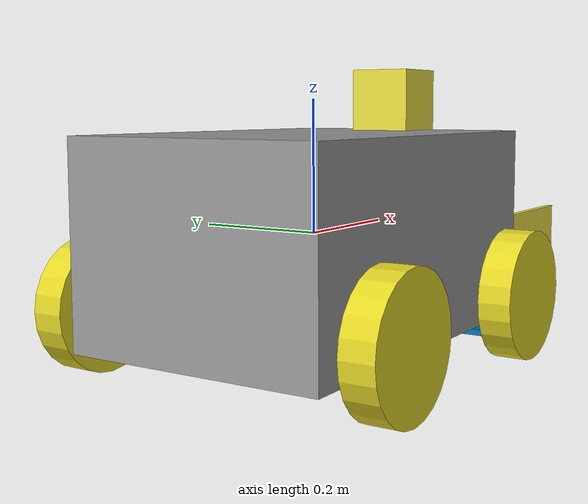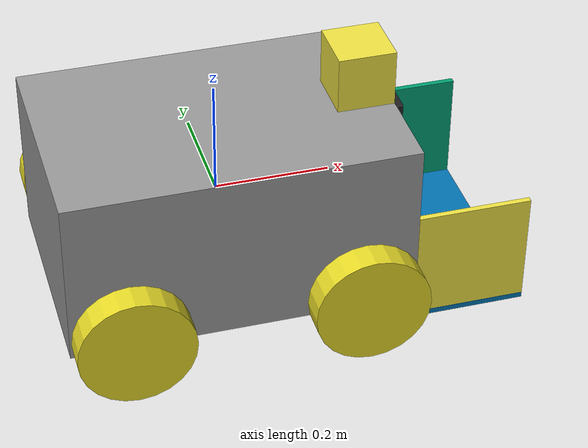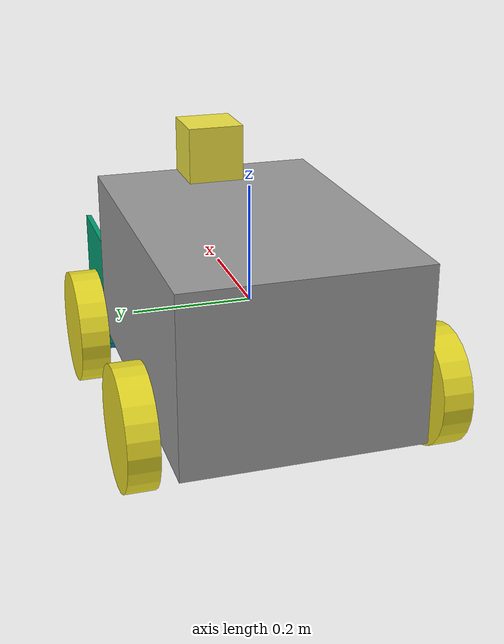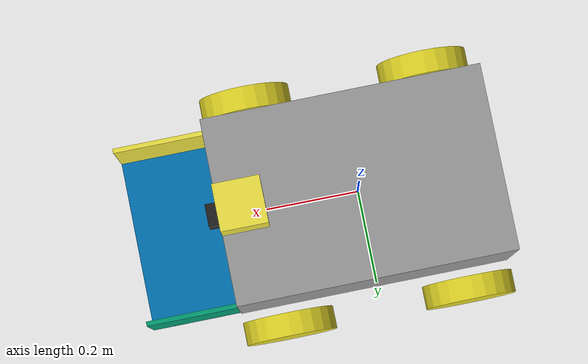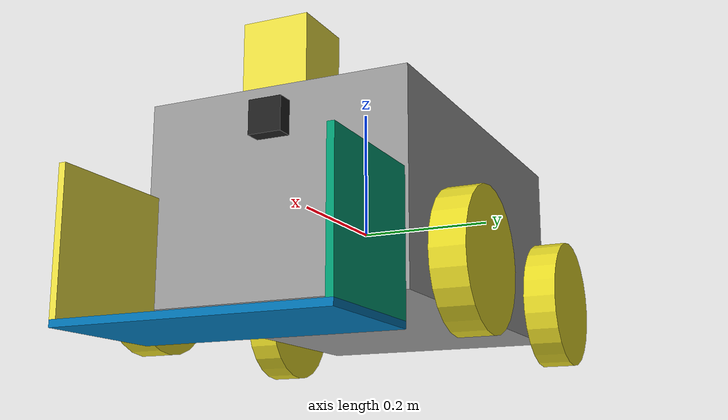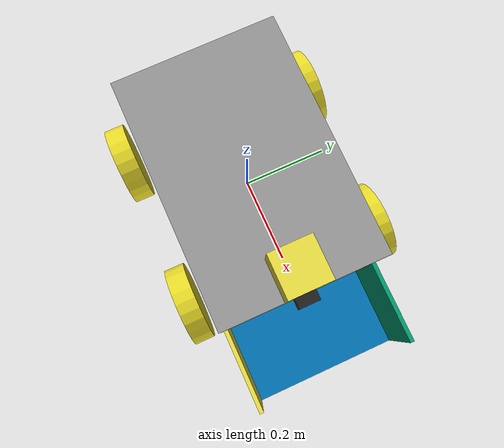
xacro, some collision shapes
<?xml version='1.0'?>

<robot name="my_robot" xmlns:xacro="http://www.ros.org/wiki/xacro">

  <xacro:include filename="$(find my_robot)/urdf/my_robot.gazebo"/>

  <link name="robot_footprint"></link>

  <joint name="robot_footprint_joint" type="fixed">
    <origin xyz="0 0 0" rpy="0 0 0" />
    <parent link="robot_footprint"/>
    <child link="chassis" />
  </joint>

  <link name='chassis'>
    <pose>0 0 0.1 0 0 0</pose>

    <inertial>
      <mass value="1.0"/>
      <origin xyz="0.0 0 0" rpy=" 0 0 0"/>
      <inertia
          ixx="0.1" ixy="0" ixz="0"
          iyy="0.1" iyz="0"
          izz="0.1"
      />
    </inertial>

    <collision name='collision'>
      <origin xyz="0 0 0" rpy=" 0 0 0"/>
      <geometry>
        <box size=".6 .4 .3"/>
      </geometry>
    </collision>

    <visual name='chassis_visual'>
      <origin xyz="0 0 0" rpy=" 0 0 0"/>
      <geometry>
        <box size=".6 .4 .3"/>
      </geometry>
    </visual>
  </link>

  <link name='skid_steer_1'>
    <inertial>
      <origin xyz="0 0 0" rpy="0 0 0"/>
      <mass value="1"/>
      <inertia
        ixx="0.1" ixy="0" ixz="0"
        iyy="0.1" iyz="0"
        izz="0.1"
      />
    </inertial>

    <collision name="skid_steer_1_collision">
      <origin xyz="0 0 0" rpy="0 0 0"/>
      <geometry>
        <box size="0.2 0.01 0.2"/>
      </geometry>
    </collision>

    <visual name="skid_steer_1_visual">
      <origin xyz="0 0 0" rpy="0 0 0"/>
      <geometry>
        <box size="0.2 0.01 0.2"/>
      </geometry>
    </visual>
  </link>

  <joint type="fixed" name="skid_steer_1_joint">
    <origin xyz="0.4 0.19 -0.09" rpy="0 0 0"/>
    <child link="skid_steer_1"/>
    <parent link="chassis"/>
    <axis xyz="0 0 0" rpy="0 0 0"/>
  </joint>

  <link name='skid_steer_2'>
    <inertial>
      <origin xyz="0 0 0" rpy="0 0 0"/>
      <mass value="1"/>
      <inertia
        ixx="0.1" ixy="0" ixz="0"
        iyy="0.1" iyz="0"
        izz="0.1"
      />
    </inertial>

    <collision name="skid_steer_2_collision">
      <origin xyz="0 0 0" rpy="0 0 0"/>
      <geometry>
        <box size="0.2 0.01 0.2"/>
      </geometry>
    </collision>

    <visual name="skid_steer_2_visual">
      <origin xyz="0 0 0" rpy="0 0 0"/>
      <geometry>
        <box size="0.2 0.01 0.2"/>
      </geometry>
    </visual>
  </link>

  <joint type="fixed" name="skid_steer_2_joint">
    <origin xyz="0.4 -0.19 -0.09" rpy="0 0 0"/>
    <child link="skid_steer_2"/>
    <parent link="chassis"/>
    <axis xyz="0 0 0" rpy="0 0 0"/>
  </joint>

  <link name='skid_steer_3'>
    <inertial>
      <origin xyz="0 0 0" rpy="0 0 0"/>
      <mass value="1"/>
      <inertia
        ixx="0.1" ixy="0" ixz="0"
        iyy="0.1" iyz="0"
        izz="0.1"
      />
    </inertial>

    <collision name="skid_steer_3_collision">
      <origin xyz="0 0 0" rpy="0 0 0"/>
      <geometry>
        <box size="0.2 0.39 0.01"/>
      </geometry>
    </collision>

    <visual name="skid_steer_3_visual">
      <origin xyz="0 0 0" rpy="0 0 0"/>
      <geometry>
        <box size="0.2 0.39 0.01"/>
      </geometry>
    </visual>
  </link>

  <joint type="fixed" name="skid_steer_3_joint">
    <origin xyz="0.4 0 -0.195" rpy="0 0 0"/>
    <child link="skid_steer_3"/>
    <parent link="chassis"/>
    <axis xyz="0 0 0" rpy="0 0 0"/>
  </joint>

  <link name='right_front_wheel'>
    <inertial>
      <origin xyz="0 0 0" rpy="0 1.57 1.57"/>
      <mass value="1"/>
      <inertia
        ixx="0.1" ixy="0" ixz="0"
        iyy="0.1" iyz="0"
        izz="0.1"
      />
    </inertial>

    <collision name="right_front_wheel_collision">
      <origin xyz="0 0 0" rpy="0 1.57 1.57"/>
      <geometry>
        <cylinder radius="0.1" length="0.05"/>
      </geometry>
    </collision>

    <visual name="right_front_wheel_visual">
      <origin xyz="0 0 0" rpy="0 1.57 1.57"/>
      <geometry>
        <cylinder radius="0.1" length="0.05"/>
      </geometry>
    </visual>
  </link>

  <joint type="continuous" name="right_front_wheel_hinge">
    <origin xyz="0.2 -0.25 -0.1" rpy="0 0 0"/>
    <child link="right_front_wheel"/>
    <parent link="chassis"/>
    <axis xyz="0 1 0" rpy="0 0 0"/>
    <limit effort="10000" velocity="1000"/>
    <dynamics damping="1.0" friction="1.0"/>
  </joint>

  <link name='left_front_wheel'>
    <inertial>
      <origin xyz="0 0 0" rpy="0 1.57 1.57"/>
      <mass value="1"/>
      <inertia
        ixx="0.1" ixy="0" ixz="0"
        iyy="0.1" iyz="0"
        izz="0.1"
      />
    </inertial>

    <collision name="left_front_wheel_collision">
      <origin xyz="0 0 0" rpy="0 1.57 1.57"/>
      <geometry>
        <cylinder radius="0.1" length="0.05"/>
      </geometry>
    </collision>

    <visual name="left_front_wheel_visual">
      <origin xyz="0 0 0" rpy="0 1.57 1.57"/>
      <geometry>
        <cylinder radius="0.1" length="0.05"/>
      </geometry>
    </visual>
  </link>

  <joint type="continuous" name="left_front_wheel_hinge">
    <origin xyz="0.2 0.25 -0.1" rpy="0 0 0"/>
    <child link="left_front_wheel"/>
    <parent link="chassis"/>
    <axis xyz="0 1 0" rpy="0 0 0"/>
    <limit effort="10000" velocity="1000"/>
    <dynamics damping="1.0" friction="1.0"/>
  </joint>

  <link name='right_rear_wheel'>
    <inertial>
      <origin xyz="0 0 0" rpy="0 1.57 1.57"/>
      <mass value="1"/>
      <inertia
        ixx="0.1" ixy="0" ixz="0"
        iyy="0.1" iyz="0"
        izz="0.1"
      />
    </inertial>

    <collision name="right_rear_wheel_collision">
      <origin xyz="0 0 0" rpy="0 1.57 1.57"/>
      <geometry>
        <cylinder radius="0.1" length="0.05"/>
      </geometry>
    </collision>

    <visual name="right_rear_wheel_visual">
      <origin xyz="0 0 0" rpy="0 1.57 1.57"/>
      <geometry>
        <cylinder radius="0.1" length="0.05"/>
      </geometry>
    </visual>
  </link>

  <joint type="continuous" name="right_rear_wheel_hinge">
    <origin xyz="-0.2 -0.25 -0.1" rpy="0 0 0"/>
    <child link="right_rear_wheel"/>
    <parent link="chassis"/>
    <axis xyz="0 1 0" rpy="0 0 0"/>
    <limit effort="10000" velocity="1000"/>
    <dynamics damping="1.0" friction="1.0"/>
  </joint>

  <link name='left_rear_wheel'>
    <inertial>
      <origin xyz="0 0 0" rpy="0 1.57 1.57"/>
      <mass value="1"/>
      <inertia
        ixx="0.1" ixy="0" ixz="0"
        iyy="0.1" iyz="0"
        izz="0.1"
      />
    </inertial>

    <collision name="left_rear_wheel_collision">
      <origin xyz="0 0 0" rpy="0 1.57 1.57"/>
      <geometry>
        <cylinder radius="0.1" length="0.05"/>
      </geometry>
    </collision>

    <visual name="left_rear_wheel_visual">
      <origin xyz="0 0 0" rpy="0 1.57 1.57"/>
      <geometry>
        <cylinder radius="0.1" length="0.05"/>
      </geometry>
    </visual>
  </link>

  <joint type="continuous" name="left_rear_wheel_hinge">
    <origin xyz="-0.2 0.25 -0.1" rpy="0 0 0"/>
    <child link="left_rear_wheel"/>
    <parent link="chassis"/>
    <axis xyz="0 1 0" rpy="0 0 0"/>
    <limit effort="10000" velocity="1000"/>
    <dynamics damping="1.0" friction="1.0"/>
  </joint>

  <link name="camera">
    <inertial>
      <origin xyz="0 0 0" rpy="0 0 0"/>
      <mass value="0.1"/>
      <inertia
        ixx="1e-6" ixy="0" ixz="0"
        iyy="1e-6" iyz="0"
        izz="1e-6"
      />
    </inertial>

    <collision name="camera_collision">
      <origin xyz="0 0 0" rpy="0 0 0"/>
      <geometry>
        <box size="0.05 0.05 0.05"/>
      </geometry>
    </collision>

    <visual name="camera_visual">
      <origin xyz="0 0 0" rpy="0 0 0"/>
      <geometry>
        <box size="0.05 0.05 0.05"/>
      </geometry>
    </visual>
  </link>

  <joint type="fixed" name="camera_joint">
    <origin xyz="0.3 0 0.1" rpy="0 0 0"/>
    <child link="camera"/>
    <parent link="chassis"/>
    <axis xyz="0 1 0" rpy="0 0 0"/>
  </joint>

  <joint name="camera_optical_joint" type="fixed">
    <origin xyz="0 0 0" rpy="-1.5707 0 -1.5707"/>
    <parent link="camera"/>
    <child link="camera_link_optical"/>
  </joint>

  <link name="camera_link_optical">
  </link>

  <link name="hokuyo">
    <inertial>
      <origin xyz="0 0 0" rpy="0 0 0"/>
      <mass value="1e-5"/>
      <inertia
        ixx="1e-6" ixy="0" ixz="0"
        iyy="1e-6" iyz="0"
        izz="1e-6"
      />
    </inertial>

    <collision>
      <origin xyz="0 0 0" rpy="0 0 0"/>
      <geometry>
        <box size="0.1 0.1 0.1"/>
      </geometry>
    </collision>

    <visual>
      <origin xyz="0 0 0" rpy="0 0 0"/>
      <geometry>
        <mesh filename = "package://my_robot/meshes/hokuyo.dae"/>
      </geometry>
    </visual>
  </link>

  <joint type="fixed" name="hokuyo_joint">
    <origin xyz="0.25 0 0.2" rpy="0 0 0"/>
    <child link="hokuyo"/>
    <parent link="chassis"/>
    <axis xyz="0 1 0" rpy="0 0 0"/>
  </joint>

  <gazebo reference="left_front_wheel">
    <material>Gazebo/Yellow</material>
  </gazebo>

  <gazebo reference="right_front_wheel">
    <material>Gazebo/Yellow</material>
  </gazebo>

  <gazebo reference="left_rear_wheel">
    <material>Gazebo/Yellow</material>
  </gazebo>

  <gazebo reference="right_rear_wheel">
    <material>Gazebo/Yellow</material>
  </gazebo>

  <gazebo reference="chassis">
    <material>Gazebo/Grey</material>
  </gazebo>

  <gazebo reference="camera">
    <material>Gazebo/Black</material>
  </gazebo>

</robot>
